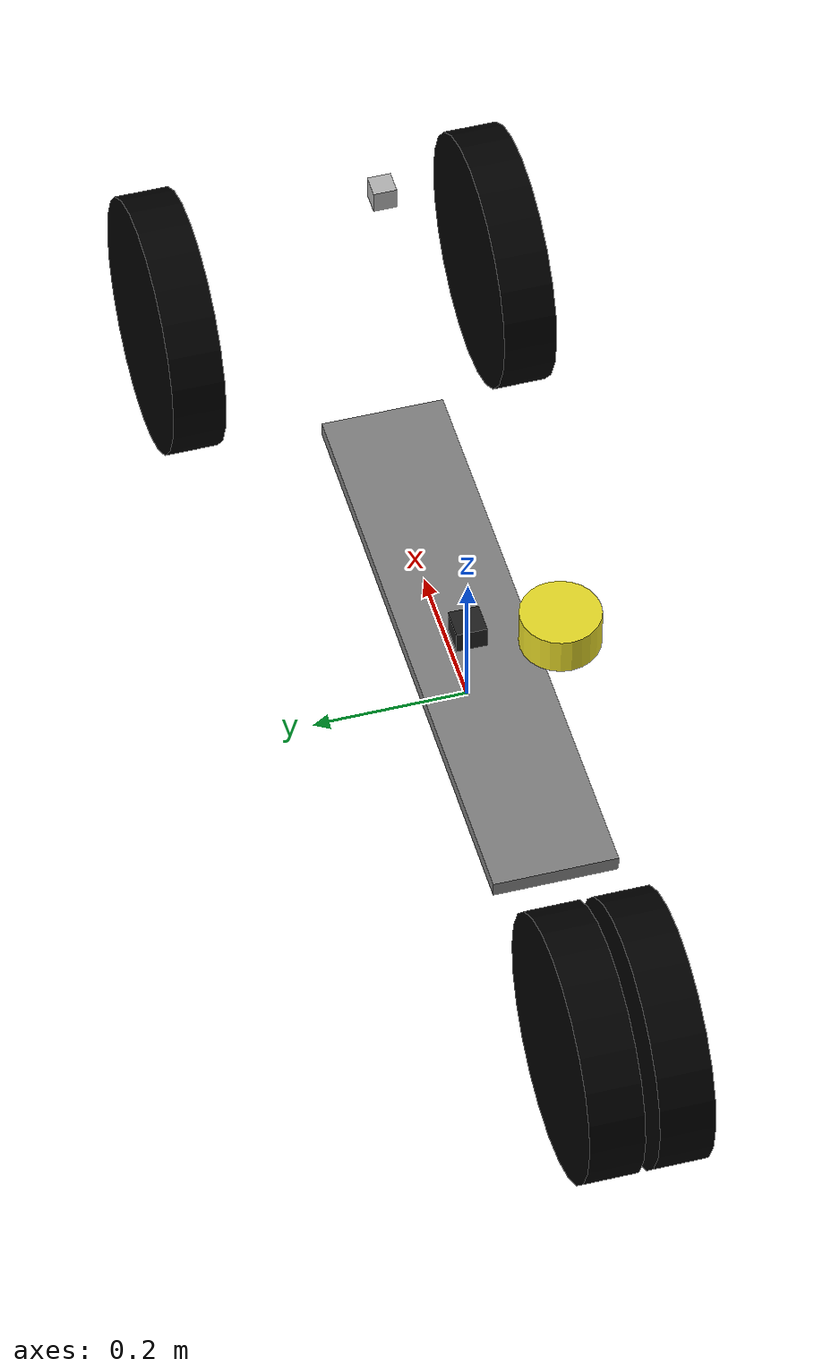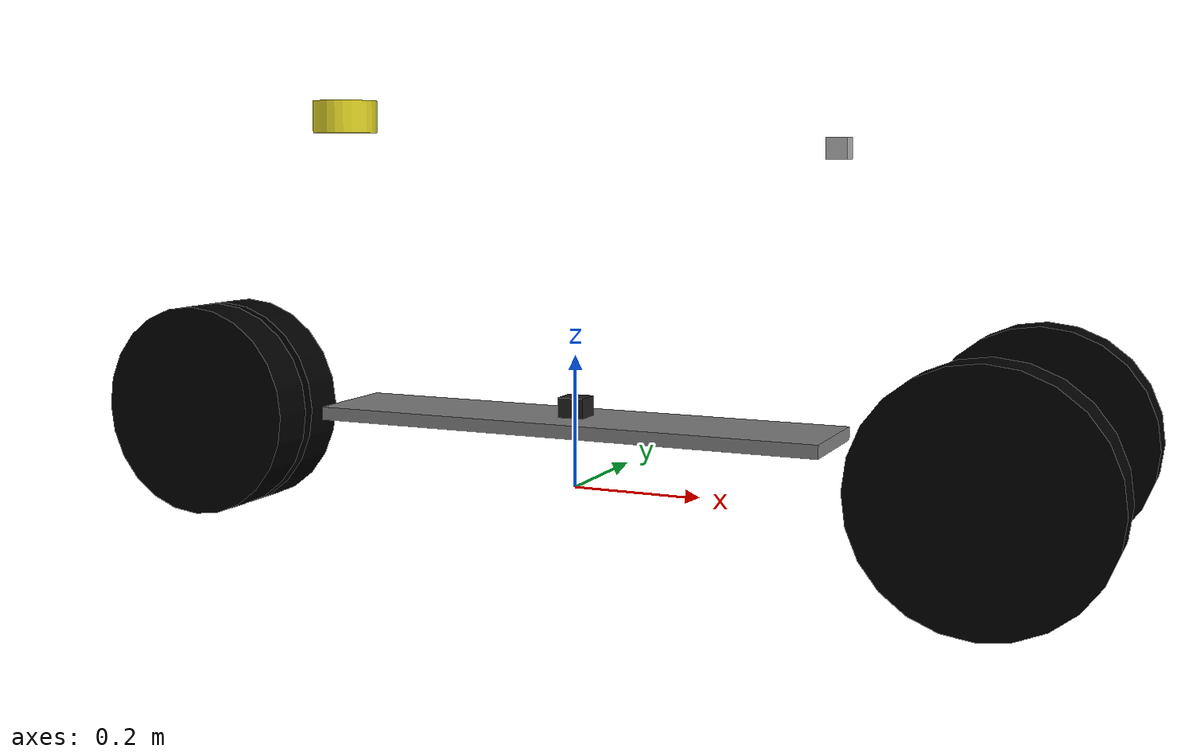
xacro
<?xml version="1.0"?>
<robot name="racecar" xmlns:xacro="http://www.ros.org/wiki/xacro">

<!-- Degree-to-radian conversions -->
  <xacro:property name="degrees_45" value="0.785398163"/>
  <xacro:property name="degrees_90" value="1.57079633"/>

<!-- chassis_length is measured along the x axis, chassis_width
       along the y axis, and chassis_height along the z axis. -->
  <xacro:property name="chassis_length" value="0.8"/>
  <xacro:property name="chassis_width" value="0.16"/>
  <xacro:property name="chassis_height" value="0.02"/>
  <xacro:property name="chassis_mass" value="10"/>

  <xacro:property name="hub_dia" value="0.30"/>
  <xacro:property name="tire_dia" value="0.34"/>
  <xacro:property name="tire_width" value="0.07"/>
  <xacro:property name="hex_hub_depth" value="0.005"/>
  <xacro:property name="wheel_mass" value="1.5"/>

  <xacro:property name="wheelbase" value="1.3"/>
  <xacro:property name="hex_hub_dist" value="0.50"/>
  <xacro:property name="axle_length" value="0.03"/>
  <xacro:property name="wheel_travel" value="0.084"/>
  <xacro:property name="shock_z_offset" value="0.0655"/>

  <xacro:property name="shock_eff_limit" value="100"/>
  <xacro:property name="shock_vel_limit" value="1000"/>

   <xacro:property name="axle_eff_limit" value="5.12766"/>
   <xacro:property name="axle_vel_limit" value="244.8696"/>

<!-- These constants are used to simulate a Traxxas 2056 servo operated at
       6 V. servo_stall_torque is measured in N m. servo_no_load_speed is
       measured in rad/s. -->

  <xacro:property name="servo_stall_torque" value="0.5649"/>
  <xacro:property name="servo_no_load_speed" value="4.553"/>

  <material name="battery_mat">
    <color rgba="0 0 1 1"/>
  </material>
  <material name="chassis_mat">
    <color rgba="0.5 0.5 0.5 1"/>
  </material>
  <material name="tire_mat">
    <color rgba="0 0 0 1"/>
  </material>
  <material name="yellow">
    <color rgba="1 0.4 0 1"/>
  </material>

<!-- Null inertial element. This is needed to make the model work with
       Gazebo. -->
  <xacro:macro name="null_inertial">
    <inertial>
      <mass value="0.001"/>
      <inertia ixx="0.001" ixy="0" ixz="0" iyy="0.001" iyz="0" izz="0.001"/>
    </inertial>
  </xacro:macro>

  <!-- Inertia of a solid cuboid. Width is measured along the x axis, depth
       along the y axis, and height along the z axis. -->
  <xacro:macro name="solid_cuboid_inertial"
               params="width depth height mass *origin">
    <inertial>
      <xacro:insert_block name="origin"/>
      <mass value="${mass}"/>
      <inertia ixx="${mass * (depth * depth + height * height) / 12}"
               ixy="0" ixz="0"
               iyy="${mass * (width * width + height * height) / 12}"
               iyz="0"
               izz="${mass * (width * width + depth * depth) / 12}"/>
    </inertial>
  </xacro:macro>

  <xacro:macro name="thick_walled_tube_inertial"
               params="inner_rad outer_rad height mass">
    <inertial>
      <mass value="${mass}"/>
      <inertia ixx="${(1 / 12) * mass * (3 * (inner_rad * inner_rad +
                    outer_rad * outer_rad) + height * height)}"
               ixy="0" ixz="0"
               iyy="${(1 / 12) * mass * (3 * (inner_rad * inner_rad +
                    outer_rad * outer_rad) + height * height)}"
               iyz="0"
               izz="${mass * (inner_rad * inner_rad +
                    outer_rad * outer_rad) / 2}"/>
    </inertial>
  </xacro:macro>

<!-- Shock absorber -->
  <xacro:macro name="shock_1"
               params="lr_prefix lr_reflect fr_reflect child">
    <joint name="${lr_prefix}_front_shock" type="prismatic">
      <parent link="chassis"/>
      <child link="${child}"/>

      <origin xyz="${fr_reflect * wheelbase / 2}
                   ${lr_reflect * ((hex_hub_dist / 2) - axle_length)}
                   ${(wheel_travel / 2) - shock_z_offset}"/>
      <axis xyz="0 0 -1"/>
      <limit lower="${-wheel_travel / 2}" upper="${wheel_travel / 2}"
             effort="${shock_eff_limit}" velocity="${shock_vel_limit}"/>
    </joint>
    <transmission name="${lr_prefix}_front_shock_trans">
      <type>transmission_interface/SimpleTransmission</type>
      <joint name="${lr_prefix}_front_shock">
        <hardwareInterface>hardware_interface/EffortJointInterface</hardwareInterface>
      </joint>
      <actuator name="${lr_prefix}_front_shock_act">
        <!-- This hardwareInterface element exists for compatibility
             with ROS Hydro. -->
        <hardwareInterface>hardware_interface/EffortJointInterface</hardwareInterface>
        <mechanicalReduction>1</mechanicalReduction>
      </actuator>
    </transmission>
  </xacro:macro>

  <xacro:macro name="shock_2"
               params="lr_prefix lr_reflect fr_reflect child">
    <joint name="${lr_prefix}_rear_shock" type="prismatic">
      <parent link="chassis"/>
      <child link="${child}"/>

      <origin xyz="${fr_reflect * wheelbase / 2}
                   ${lr_reflect * ((hex_hub_dist / 2) - axle_length)*0.2}
                   ${(wheel_travel / 2) - shock_z_offset}"/>
      <axis xyz="0 0 -1"/>
      <limit lower="${-wheel_travel / 2}" upper="${wheel_travel / 2}"
             effort="${shock_eff_limit}" velocity="${shock_vel_limit}"/>
    </joint>
    <transmission name="${lr_prefix}_rear_shock_trans">
      <type>transmission_interface/SimpleTransmission</type>
      <joint name="${lr_prefix}_rear_shock">
        <hardwareInterface>hardware_interface/EffortJointInterface</hardwareInterface>
      </joint>
      <actuator name="${lr_prefix}_rear_shock_act">
        <!-- This hardwareInterface element exists for compatibility
             with ROS Hydro. -->
        <hardwareInterface>hardware_interface/EffortJointInterface</hardwareInterface>
        <mechanicalReduction>1</mechanicalReduction>
      </actuator>
    </transmission>
  </xacro:macro>

  <!-- The "wheel" macro defines wheel. -->
  <xacro:macro name="wheel_front" params="lr_prefix lr_reflect">
    <link name="${lr_prefix}_front_axle_carrier">
      <xacro:null_inertial/>
    </link>

    <!-- The left and right axles have the same axis so that identical
         rotation values cause the wheels to rotate in the same direction. -->
    <joint name="${lr_prefix}_front_axle" type="continuous">
      <parent link="${lr_prefix}_front_axle_carrier"/>
      <child link="${lr_prefix}_front_wheel"/>
      <origin rpy="${degrees_90} 0 0"/>
      <axis xyz="0 0 -1"/>
      <limit effort="${axle_eff_limit}" velocity="${axle_vel_limit}"/>
    </joint>
    <transmission name="${lr_prefix}_front_axle_trans">
      <type>transmission_interface/SimpleTransmission</type>
      <joint name="${lr_prefix}_front_axle">
        <hardwareInterface>hardware_interface/EffortJointInterface</hardwareInterface>
      </joint>
      <actuator name="${lr_prefix}_front_axle_act">
      <!-- This hardwareInterface element exists for compatibility
             with ROS Hydro. -->
        <hardwareInterface>hardware_interface/EffortJointInterface</hardwareInterface>
        <mechanicalReduction>1</mechanicalReduction>
      </actuator>
    </transmission>

    <link name="${lr_prefix}_front_wheel">
      <visual>
        <origin xyz="0
                     ${lr_reflect * (axle_length - (tire_width /
                     2 - hex_hub_depth))}
                     0"/>
        <geometry>
          <cylinder radius="${tire_dia / 2}" length="${tire_width}"/>
        </geometry>
        <material name="tire_mat"/>
      </visual>

      <collision>
        <origin xyz="0
                     ${lr_reflect * (axle_length - (tire_width /
                     2 - hex_hub_depth))}
                     0"/>
        <geometry>
          <cylinder radius="${tire_dia / 2}" length="${tire_width}"/>
        </geometry>
      </collision>

      <xacro:thick_walled_tube_inertial
          inner_rad="${hub_dia / 2}" outer_rad="${tire_dia / 2}"
          height="${tire_width}" mass="${wheel_mass}"/>
      </link>

    <gazebo reference="${lr_prefix}_front_wheel">
      <material>Gazebo/Black</material>
    </gazebo>
   </xacro:macro>

     <xacro:macro name="wheel_rear" params="lr_prefix lr_reflect">
    <link name="${lr_prefix}_rear_axle_carrier">
      <xacro:null_inertial/>
    </link>

    <!-- The left and right axles have the same axis so that identical
         rotation values cause the wheels to rotate in the same direction. -->
    <joint name="${lr_prefix}_rear_axle" type="continuous">
      <parent link="${lr_prefix}_rear_axle_carrier"/>
      <child link="${lr_prefix}_rear_wheel"/>
      <origin rpy="${degrees_90} 0 0"/>
      <axis xyz="0 0 -1"/>
      <limit effort="${axle_eff_limit}" velocity="${axle_vel_limit}"/>
    </joint>
    <transmission name="${lr_prefix}_rear_axle_trans">
      <type>transmission_interface/SimpleTransmission</type>
      <joint name="${lr_prefix}_rear_axle">
        <hardwareInterface>hardware_interface/EffortJointInterface</hardwareInterface>
      </joint>
      <actuator name="${lr_prefix}_rear_axle_act">
      <!-- This hardwareInterface element exists for compatibility
             with ROS Hydro. -->
        <hardwareInterface>hardware_interface/EffortJointInterface</hardwareInterface>
        <mechanicalReduction>1</mechanicalReduction>
      </actuator>
    </transmission>

    <link name="${lr_prefix}_rear_wheel">
      <visual>
        <origin xyz="0
                     ${lr_reflect * (axle_length - (tire_width /
                     2 - hex_hub_depth))}
                     0"/>
        <geometry>
          <cylinder radius="${tire_dia / 2}" length="${tire_width}"/>
        </geometry>
        <material name="tire_mat"/>
      </visual>

      <collision>
        <origin xyz="0
                     ${lr_reflect * (axle_length - (tire_width /
                     2 - hex_hub_depth))}
                     0"/>
        <geometry>
          <cylinder radius="${tire_dia / 2}" length="${tire_width}"/>
        </geometry>
      </collision>

      <xacro:thick_walled_tube_inertial
          inner_rad="${hub_dia / 2}" outer_rad="${tire_dia / 2}"
          height="${tire_width}" mass="${wheel_mass}"/>
      </link>

    <gazebo reference="${lr_prefix}_rear_wheel">
      <material>Gazebo/Black</material>
    </gazebo>
   </xacro:macro>

<!-- Front wheel -->
  <xacro:macro name="front_wheel"
               params="lr_prefix lr_reflect  fr_reflect">
    <xacro:shock_1 lr_prefix="${lr_prefix}"
                 lr_reflect="${lr_reflect}" fr_reflect="${fr_reflect}"
                 child="${lr_prefix}_steering_link"/>

    <link name="${lr_prefix}_steering_link">
      <xacro:null_inertial/>
    </link>

    <joint name="${lr_prefix}_steering_joint" type="revolute">
      <parent link="${lr_prefix}_steering_link"/>
      <child link="${lr_prefix}_front_axle_carrier"/>
      <axis xyz="0 0 1"/>
      <limit lower="${-degrees_45}" upper="${degrees_45}"
             effort="${servo_stall_torque}" velocity="${servo_no_load_speed}"/>
    </joint>
    <transmission name="${lr_prefix}_steering_trans">
      <type>transmission_interface/SimpleTransmission</type>
      <joint name="${lr_prefix}_steering_joint">
        <hardwareInterface>hardware_interface/EffortJointInterface</hardwareInterface>
      </joint>
      <actuator name="${lr_prefix}_steering_act">
        <!-- This hardwareInterface element exists for compatibility
             with ROS Hydro. -->
        <hardwareInterface>hardware_interface/EffortJointInterface</hardwareInterface>
        <mechanicalReduction>1</mechanicalReduction>
      </actuator>
    </transmission>

    <xacro:wheel_front lr_prefix="${lr_prefix}"
                 lr_reflect="${lr_reflect}"/>
  </xacro:macro>

<!-- Rear wheel -->
  <xacro:macro name="rear_wheel"
               params="lr_prefix lr_reflect fr_reflect">
    <xacro:shock_2 lr_prefix="${lr_prefix}"
                 lr_reflect="${lr_reflect}" fr_reflect="${fr_reflect}"
                 child="${lr_prefix}_rear_axle_carrier"/>
    <xacro:wheel_rear lr_prefix="${lr_prefix}"
                 lr_reflect="${lr_reflect}"/>
  </xacro:macro>

<link name="base_footprint"/>
  <!-- base_link must have geometry so that its axes can be displayed in
       rviz. -->
  <link name="base_link">
    <visual>
      <origin xyz="0 0 ${-chassis_height / 2}"/>
      <geometry>
        <box size="0.01 0.01 0.01"/>
      </geometry>
      <material name="chassis_mat"/>
    </visual>

    <collision>
      <origin xyz="0 0 ${-chassis_height / 2}"/>
      <geometry>
        <box size="0.01 0.01 0.01"/>
      </geometry>
    </collision>

    <xacro:solid_cuboid_inertial
        width="0.01" depth="0.01"
        height="0.01" mass="0.01">
      <origin xyz="0 0 ${-chassis_height / 2}"/>
    </xacro:solid_cuboid_inertial>
  </link>

  <joint name="base_footprint_to_base_link" type="fixed">
    <parent link="base_footprint"/>
    <child link="base_link"/>
    <origin xyz="0 0 ${(wheel_travel/2)+shock_z_offset}" />
  </joint>

  <!-- Chassis -->
  <link name="chassis">
    <visual>
      <origin xyz="0 0 ${-chassis_height / 2}"/>
      <geometry>
        <box size="${chassis_length} ${chassis_width} ${chassis_height}"/>
      </geometry>
      <material name="chassis_mat"/>
    </visual>

    <collision>
      <origin xyz="0 0 ${-chassis_height / 2}"/>
      <geometry>
        <box size="${chassis_length} ${chassis_width} ${chassis_height}"/>
      </geometry>
    </collision>

    <xacro:solid_cuboid_inertial
        width="${chassis_length}" depth="${chassis_width}"
        height="${chassis_height}" mass="${chassis_mass}">
      <origin xyz="0 0 ${-chassis_height / 2}"/>
    </xacro:solid_cuboid_inertial>
  </link>

  <joint name="base_link_to_chassis" type="fixed">
    <parent link="base_link"/>
    <child link="chassis"/>
  </joint>

  <!-- Wheels -->
  <xacro:front_wheel lr_prefix="left"
                     lr_reflect="1" fr_reflect="1"/>
  <xacro:front_wheel lr_prefix="right"
                     lr_reflect="-1" fr_reflect="1"/>
  <xacro:rear_wheel lr_prefix="left"
                    lr_reflect="1" fr_reflect="-1"/>
  <xacro:rear_wheel lr_prefix="right"
                    lr_reflect="-1" fr_reflect="-1"/>

  <gazebo>
    <plugin name="gazebo_ros_control" filename="libgazebo_ros_control.so">
    <legacyModeNS>true</legacyModeNS>
    <robotSimType>gazebo_ros_control/DefaultRobotHWSim</robotSimType>
    <robotNamespace>/racecar</robotNamespace>
    </plugin>
  </gazebo>

 <link name="imu_link">
            <inertial>
                <mass value="0.001" />
                <origin xyz="0 0 0" />
                <inertia ixx="0.001" ixy="0.0" ixz="0.0"
                         iyy="0.001" iyz="0.0"
                         izz="0.001" />
            </inertial>

            <visual>
                <origin xyz=" 0 0 0 " rpy="0 0 0" />
                <geometry>
                    <box size="0.04 0.04 0.03" />
                </geometry>
            </visual>

            <collision>
                <origin xyz="0.0 0.0 0.0" rpy="0 0 0" />
                <geometry>
                    <box size="0.04 0.04 0.03" />
                </geometry>
            </collision>
        </link>
        <gazebo reference="imu_link">
            <material>Gazebo/Black</material>
        </gazebo>

        <gazebo reference="imu_link">
            <gravity>true</gravity>
            <sensor name="imu_sensor" type="imu">
                <always_on>true</always_on>
                <update_rate>100</update_rate>
                <visualize>true</visualize>
                <topic>/imu_data</topic>
                <plugin filename="libgazebo_ros_imu_sensor.so" name="imu_plugin">
                    <topicName>/imu</topicName>
                    <bodyName>imu_link</bodyName>
                    <updateRateHZ>100.0</updateRateHZ>
                    <gaussianNoise>0.0</gaussianNoise>
                    <xyzOffset>0 0 0</xyzOffset>
                    <rpyOffset>0 0 0</rpyOffset>
                    <frameName>imu_link</frameName>
                </plugin>
                <pose>0 0 0 0 0 0</pose>
            </sensor>
        </gazebo>

        <link name="lidar_link">
            <inertial>
                <mass value="0.001" />
                <origin xyz="0 0 0" />
                <inertia ixx="0.001" ixy="0.0" ixz="0.0"
                         iyy="0.001" iyz="0.0"
                         izz="0.001" />
            </inertial>

            <visual>
                <origin xyz=" 0 0 0 " rpy="0 0 0" />
                <geometry>
                    <cylinder length="0.05" radius="0.05"/>
                </geometry>
            </visual>

            <collision>
                <origin xyz="0.0 0.0 0.0" rpy="0 0 0" />
                <geometry>
                    <cylinder length="0.06" radius="0.05"/>
                </geometry>
            </collision>
        </link>
        <gazebo reference="lidar_link">
            <material>yellow</material>
        </gazebo>

        <gazebo reference="lidar_link">
            <sensor type="ray" name="ls01g">
                <pose>0 0 0 0 0 0</pose>
                <visualize>false</visualize>
                <update_rate>10.0</update_rate>
                <ray>
                    <scan>
                        <horizontal>
                            <samples>720</samples>
                            <resolution>1</resolution>
                            <min_angle>-3.1415926</min_angle>
                            <max_angle>3.1415926</max_angle>
                        </horizontal>
                    </scan>
                    <range>
                        <min>0.10</min>
                        <max>8.0</max>
                        <resolution>0.01</resolution>
                    </range>
                    <noise>
                        <type>gaussian</type>
                        <mean>0.0</mean>
                        <stddev>0.01</stddev>
                    </noise>
                </ray>
                <plugin name="gazebo_ls01g" filename="libgazebo_ros_laser.so">
                    <topicName>/scan</topicName>
                    <frameName>lidar_link</frameName>
                </plugin>
            </sensor>
        </gazebo>

     <link name="camera_link">
	    <inertial>
		<mass value="0.001" />
		<origin xyz="0 0 0" />
		<inertia ixx="0.001" ixy="0.0" ixz="0.0"
		         iyy="0.001" iyz="0.0"
		         izz="0.001" />
	    </inertial>

	    <visual>
		<origin xyz=" 0 0 0 " rpy="1.57 0 1.57" />
		<geometry>
		    <box size="0.03 0.03 0.03" />
		</geometry>
	    </visual>

	    <collision>
		<origin xyz="0.0 0.0 0.0" rpy="0 0 0" />
		<geometry>
		    <box size="0.03 0.03 0.03" />
		</geometry>
	    </collision>
	</link>

    <gazebo reference="camera_link">
      <sensor type="depth" name="camera">
        <always_on>true</always_on>
        <update_rate>20.0</update_rate>
        <camera>
          <horizontal_fov>1.3962</horizontal_fov>
          <image>
            <format>B8G8R8</format>
            <width>640</width>
            <height>480</height>
          </image>
          <clip>
            <near>0.05</near>
            <far>8.0</far>
          </clip>
        </camera>
     <plugin name="camera_controller" filename="libgazebo_ros_openni_kinect.so">
       <baseline>0.1</baseline>
       <alwaysOn>true</alwaysOn>
       <updateRate>30.0</updateRate>
       <cameraName>camera</cameraName>
       <imageTopicName>/camera/rgb/image_raw</imageTopicName>
       <cameraInfoTopicName>/camera/rgb/camera_info</cameraInfoTopicName>
       <depthImageTopicName>/camera/depth/image_raw</depthImageTopicName>
       <depthImageCameraInfoTopicName>/camera/depth_registered/camera_info</depthImageCameraInfoTopicName>
       <pointCloudTopicName>/camera/depth_registered/points</pointCloudTopicName>
       <frameName>camera_link_fake</frameName>
       <distortion_k1>0.0</distortion_k1>
       <distortion_k2>0.0</distortion_k2>
       <distortion_k3>0.0</distortion_k3>
       <distortion_t1>0.0</distortion_t1>
       <distortion_t2>0.0</distortion_t2>
       <pointCloudCutoff>0.4</pointCloudCutoff>
     </plugin>
   </sensor>
  </gazebo>

  <gazebo>
    <plugin name="novatel_gps_sim" filename="libhector_gazebo_ros_gps.so">
      <alwaysOn>1</alwaysOn>
      <updateRate>10.0</updateRate>
      <bodyName>base_link</bodyName>
      <topicName>fix</topicName>
      <velocityTopicName>fix_velocity</velocityTopicName>
      <drift>5.0 5.0 5.0</drift>
      <gaussianNoise>0.1 0.1 0.1</gaussianNoise>
      <velocityDrift>0 0 0</velocityDrift>
      <velocityGaussianNoise>0.1 0.1 0.1</velocityGaussianNoise>
    </plugin>
  </gazebo>

  <joint name="lidar_joint" type="fixed">
    <origin xyz="-0.4 0 0.45" rpy="0 0 0" />
    <parent link="base_link"/>
    <child link="lidar_link"/>
  </joint>

  <joint name="imu_joint" type="fixed">
    <origin xyz="0 0 0.015" rpy="0 0 0" />
    <parent link="base_link"/>
    <child link="imu_link"/>
  </joint>

  <joint name="camera_joint" type="fixed">
    <origin xyz="0.4 0 0.4" rpy="0 0 0" />
    <parent link="base_link"/>
    <child link="camera_link"/>
  </joint>

  <link name="camera_link_fake"></link>
  <joint name="camera_joint_fake" type="fixed">
    <origin xyz="0 0 0" rpy="-1.5708 0 -1.5708"/>
    <parent link="camera_link"/>
    <child link="camera_link_fake"/>
  </joint>
</robot>
